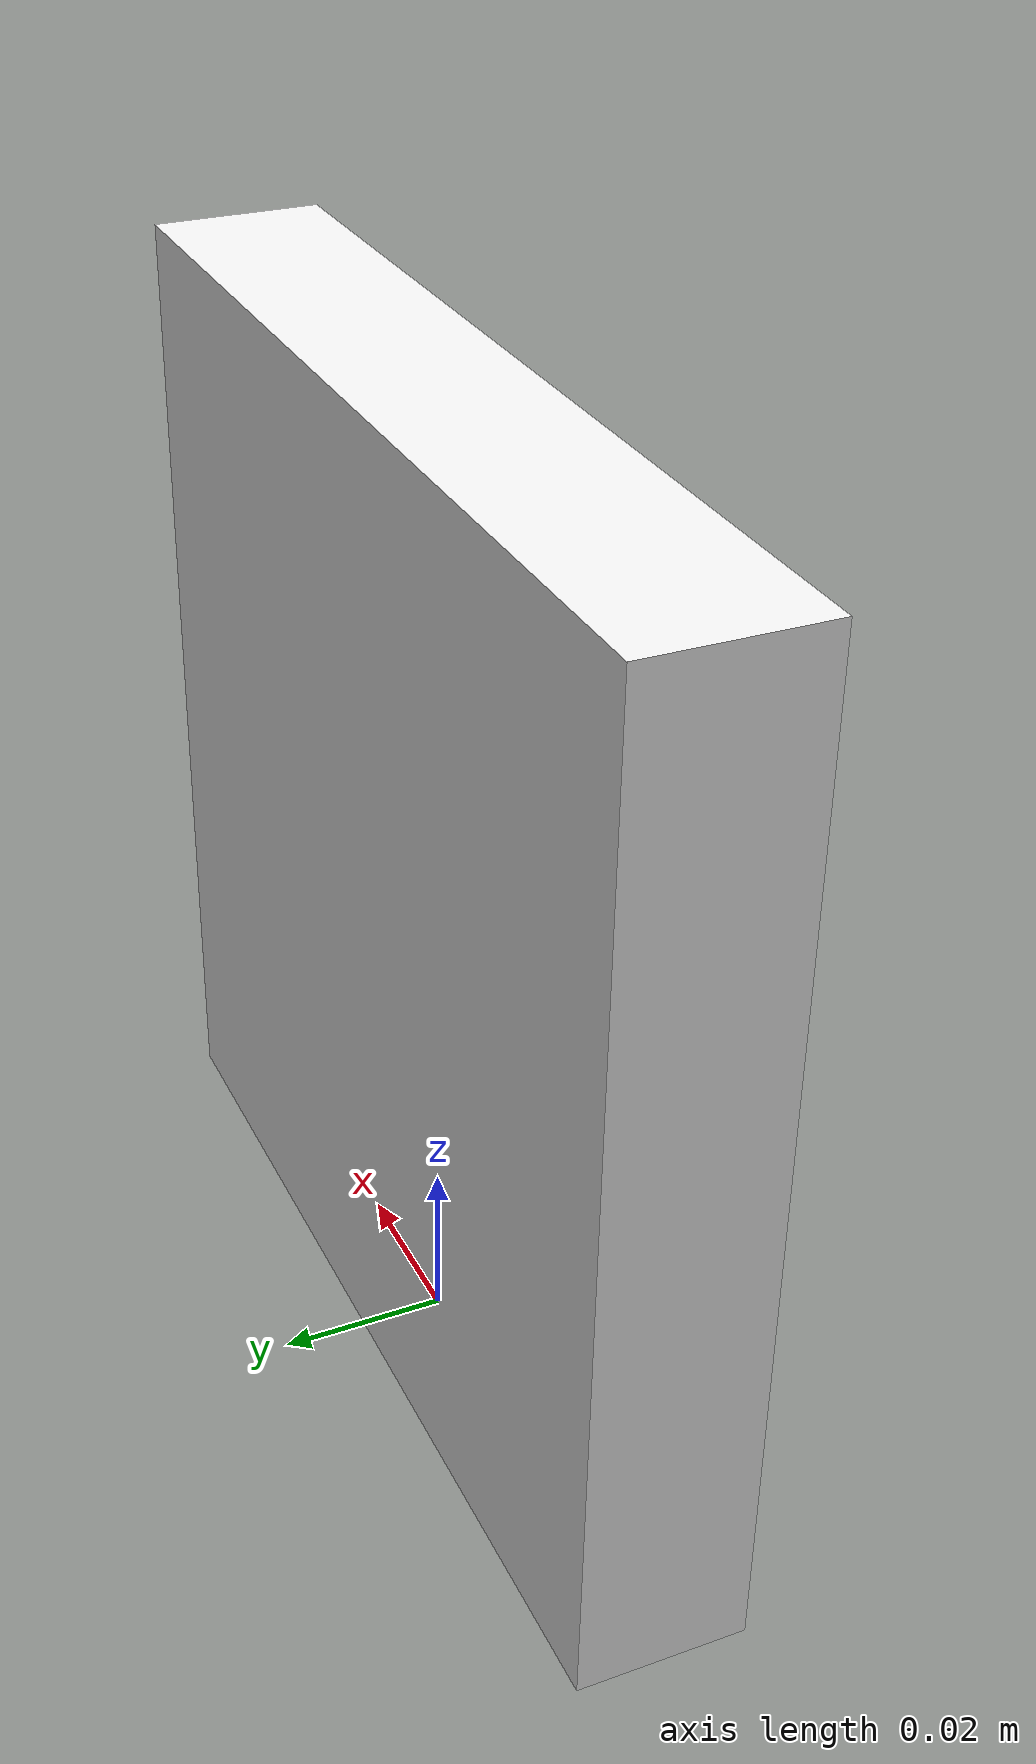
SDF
<?xml version="1.0"?>
<sdf version="1.6">
  <model name="marker1">
    <static>true</static>
    <link name="link">
      <pose>0 0 0.0600 0 0 0</pose>
      <collision name="collision">
        <geometry><box><size>0.12 0.02 0.12</size></box></geometry>
      </collision>
      <visual name="visual">
        <geometry><box><size>0.12 0.02 0.12</size></box></geometry>
        <material>
          <ambient>0.95 0.95 0.95 1.0</ambient>
          <diffuse>0.95 0.95 0.95 1.0</diffuse>
        </material>
      </visual>
    </link>
  </model>
</sdf>
